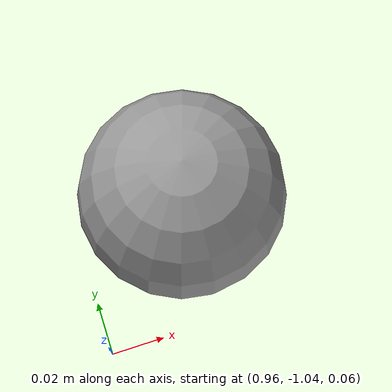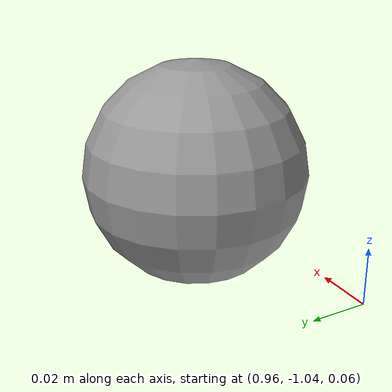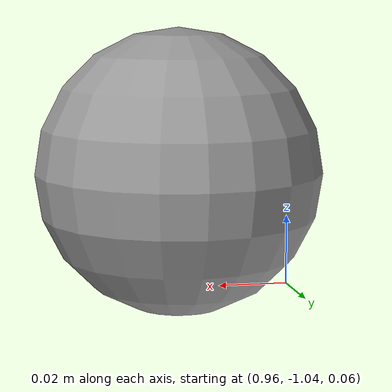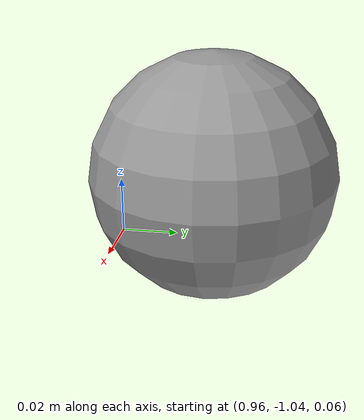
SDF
<?xml version="1.0" ?>
<sdf version='1.4'>
    <model name='unit_sphere_1'>
      <pose frame=''>1 -1 0.1 0 -0 0</pose>
      <link name='link'>
        <inertial>
          <mass>1</mass>
          <inertia>
            <ixx>0.1</ixx>
            <ixy>0</ixy>
            <ixz>0</ixz>
            <iyy>0.1</iyy>
            <iyz>0</iyz>
            <izz>0.1</izz>
          </inertia>
        </inertial>
        <collision name='collision'>
          <geometry>
            <sphere>
              <radius>0.0363992</radius>
            </sphere>
          </geometry>
          <max_contacts>50</max_contacts>
          <surface>
            <contact>
              <ode/>
            </contact>
            <bounce/>
            <friction>
              <ode/>
            </friction>
          </surface>
        </collision>
        <visual name='visual'>
          <geometry>
            <sphere>
              <radius>0.0363992</radius>
            </sphere>
          </geometry>
          <material>
            <script>
              <name>Gazebo/Grey</name>
              <uri>file://media/materials/scripts/gazebo.material</uri>
            </script>
          </material>
        </visual>
        <self_collide>0</self_collide>
        <kinematic>0</kinematic>
        <gravity>1</gravity>
      </link>
    </model>
</sdf>
